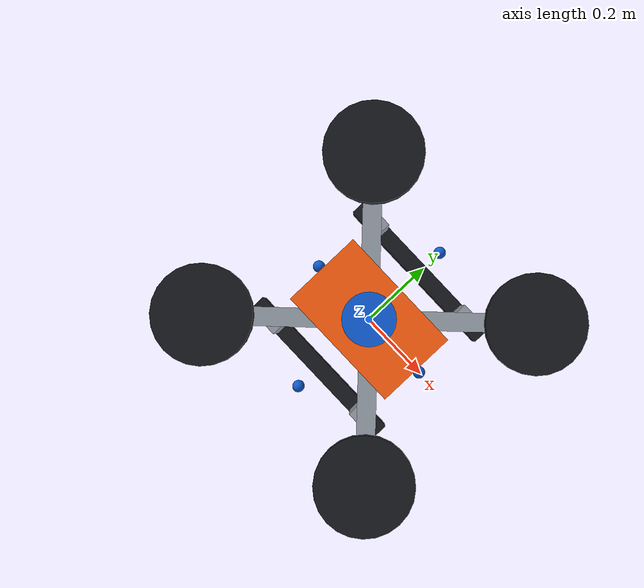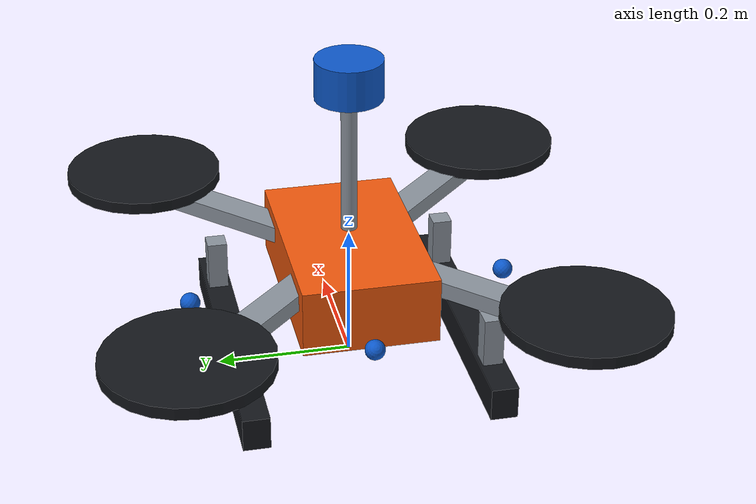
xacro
<?xml version="1.0"?>
<robot name="campus_uav" xmlns:xacro="http://www.ros.org/wiki/xacro">
  <xacro:arg name="params_path" default="$(find uav_description)/config/uav_model.yaml"/>
  <xacro:arg name="enable_docking" default="false"/>
  <xacro:arg name="visualize_sensor_rays" default="false"/>
  <xacro:property name="model" value="${xacro.load_yaml('$(arg params_path)')}"/>

  <material name="uav_orange"><color rgba="0.95 0.35 0.05 1"/></material>
  <material name="uav_dark"><color rgba="0.08 0.09 0.11 1"/></material>
  <material name="uav_silver"><color rgba="0.55 0.58 0.62 1"/></material>
  <material name="sensor_blue"><color rgba="0.05 0.35 0.80 1"/></material>

  <xacro:macro name="uav_range_sensor" params="name topic xyz rpy max_range">
    <link name="${name}_link">
      <visual>
        <geometry><sphere radius="0.015"/></geometry>
        <material name="sensor_blue"/>
      </visual>
    </link>
    <joint name="${name}_joint" type="fixed">
      <parent link="base_link"/>
      <child link="${name}_link"/>
      <origin xyz="${xyz}" rpy="${rpy}"/>
    </joint>
    <gazebo reference="${name}_link">
      <sensor name="${name}" type="ray">
        <always_on>true</always_on>
        <update_rate>10</update_rate>
        <visualize>$(arg visualize_sensor_rays)</visualize>
        <ray>
          <scan>
            <horizontal>
              <samples>5</samples>
              <resolution>1</resolution>
              <min_angle>-0.0872664626</min_angle>
              <max_angle>0.0872664626</max_angle>
            </horizontal>
          </scan>
          <range>
            <min>0.05</min>
            <max>${max_range}</max>
            <resolution>0.01</resolution>
          </range>
          <noise>
            <type>gaussian</type>
            <mean>0.0</mean>
            <stddev>0.005</stddev>
          </noise>
        </ray>
        <plugin name="${name}_ros" filename="libgazebo_ros_ray_sensor.so">
          <ros>
            <namespace>${model['namespace']}</namespace>
            <remapping>~/out:=range_raw/${topic}</remapping>
          </ros>
          <output_type>sensor_msgs/LaserScan</output_type>
          <frame_name>uav/${name}_link</frame_name>
        </plugin>
      </sensor>
    </gazebo>
  </xacro:macro>

  <link name="base_footprint"/>
  <joint name="base_footprint_joint" type="fixed">
    <parent link="base_footprint"/>
    <child link="base_link"/>
  </joint>

  <link name="base_link">
    <inertial>
      <origin xyz="0 0 0.15" rpy="0 0 0"/>
      <mass value="1.535"/>
      <inertia ixx="0.1152" ixy="0" ixz="0" iyy="0.1152" iyz="0" izz="0.218"/>
    </inertial>
    <collision name="body_collision">
      <origin xyz="0 0 0.15" rpy="0 0 0"/>
      <geometry><box size="0.34 0.22 0.10"/></geometry>
    </collision>
    <collision name="arm_front_collision">
      <origin xyz="0 0 0.17" rpy="0 0 0.785398"/>
      <geometry><box size="0.78 0.045 0.025"/></geometry>
    </collision>
    <collision name="arm_rear_collision">
      <origin xyz="0 0 0.17" rpy="0 0 -0.785398"/>
      <geometry><box size="0.78 0.045 0.025"/></geometry>
    </collision>
    <collision name="rotor_front_left_collision">
      <origin xyz="0.275 0.275 0.19" rpy="0 0 0"/>
      <geometry><cylinder radius="0.12" length="0.018"/></geometry>
    </collision>
    <collision name="rotor_front_right_collision">
      <origin xyz="0.275 -0.275 0.19" rpy="0 0 0"/>
      <geometry><cylinder radius="0.12" length="0.018"/></geometry>
    </collision>
    <collision name="rotor_rear_left_collision">
      <origin xyz="-0.275 0.275 0.19" rpy="0 0 0"/>
      <geometry><cylinder radius="0.12" length="0.018"/></geometry>
    </collision>
    <collision name="rotor_rear_right_collision">
      <origin xyz="-0.275 -0.275 0.19" rpy="0 0 0"/>
      <geometry><cylinder radius="0.12" length="0.018"/></geometry>
    </collision>
    <collision name="left_skid_collision">
      <origin xyz="0 0.18 0.025" rpy="0 0 0"/>
      <geometry><box size="0.46 0.04 0.05"/></geometry>
    </collision>
    <collision name="right_skid_collision">
      <origin xyz="0 -0.18 0.025" rpy="0 0 0"/>
      <geometry><box size="0.46 0.04 0.05"/></geometry>
    </collision>
    <collision name="lidar_mast_collision">
      <origin xyz="0 0 0.33" rpy="0 0 0"/>
      <geometry><cylinder radius="0.015" length="0.24"/></geometry>
    </collision>
    <visual>
      <origin xyz="0 0 0.15" rpy="0 0 0"/>
      <geometry><box size="0.32 0.20 0.10"/></geometry>
      <material name="uav_orange"/>
    </visual>
    <visual>
      <origin xyz="0 0 0.17" rpy="0 0 0.785398"/>
      <geometry><box size="0.78 0.045 0.025"/></geometry>
      <material name="uav_silver"/>
    </visual>
    <visual>
      <origin xyz="0 0 0.17" rpy="0 0 -0.785398"/>
      <geometry><box size="0.78 0.045 0.025"/></geometry>
      <material name="uav_silver"/>
    </visual>
    <visual><origin xyz="0.275 0.275 0.19"/><geometry><cylinder radius="0.12" length="0.018"/></geometry><material name="uav_dark"/></visual>
    <visual><origin xyz="0.275 -0.275 0.19"/><geometry><cylinder radius="0.12" length="0.018"/></geometry><material name="uav_dark"/></visual>
    <visual><origin xyz="-0.275 0.275 0.19"/><geometry><cylinder radius="0.12" length="0.018"/></geometry><material name="uav_dark"/></visual>
    <visual><origin xyz="-0.275 -0.275 0.19"/><geometry><cylinder radius="0.12" length="0.018"/></geometry><material name="uav_dark"/></visual>
    <visual><origin xyz="0 0.18 0.025"/><geometry><box size="0.46 0.04 0.05"/></geometry><material name="uav_dark"/></visual>
    <visual><origin xyz="0 -0.18 0.025"/><geometry><box size="0.46 0.04 0.05"/></geometry><material name="uav_dark"/></visual>
    <visual><origin xyz="0.15 0.18 0.075"/><geometry><box size="0.03 0.03 0.10"/></geometry><material name="uav_silver"/></visual>
    <visual><origin xyz="-0.15 0.18 0.075"/><geometry><box size="0.03 0.03 0.10"/></geometry><material name="uav_silver"/></visual>
    <visual><origin xyz="0.15 -0.18 0.075"/><geometry><box size="0.03 0.03 0.10"/></geometry><material name="uav_silver"/></visual>
    <visual><origin xyz="-0.15 -0.18 0.075"/><geometry><box size="0.03 0.03 0.10"/></geometry><material name="uav_silver"/></visual>
    <visual><origin xyz="0 0 0.33"/><geometry><cylinder radius="0.012" length="0.24"/></geometry><material name="uav_silver"/></visual>
  </link>

  <link name="imu_link"/>
  <joint name="imu_joint" type="fixed">
    <parent link="base_link"/>
    <child link="imu_link"/>
    <origin xyz="0 0 0.15" rpy="0 0 0"/>
  </joint>

  <link name="top_3d_lidar_link">
    <visual>
      <geometry><cylinder radius="0.05" length="0.06"/></geometry>
      <material name="sensor_blue"/>
    </visual>
  </link>
  <joint name="top_3d_lidar_joint" type="fixed">
    <parent link="base_link"/>
    <child link="top_3d_lidar_link"/>
    <origin xyz="0 0 0.45" rpy="0 0 0"/>
  </joint>

  <link name="down_camera_link">
    <visual>
      <geometry><box size="0.05 0.07 0.04"/></geometry>
      <material name="sensor_blue"/>
    </visual>
  </link>
  <joint name="down_camera_joint" type="fixed">
    <parent link="base_link"/>
    <child link="down_camera_link"/>
    <origin xyz="0 0 0.09" rpy="0 1.57079632679 0"/>
  </joint>

  <link name="down_camera_optical_frame"/>
  <joint name="down_camera_optical_joint" type="fixed">
    <parent link="down_camera_link"/>
    <child link="down_camera_optical_frame"/>
    <origin xyz="0 0 0" rpy="-1.57079632679 0 -1.57079632679"/>
  </joint>

  <xacro:uav_range_sensor
    name="down_range" topic="down"
    xyz="0 0 0.09" rpy="0 1.57079632679 0" max_range="30.0"/>
  <xacro:uav_range_sensor
    name="front_down_range" topic="front_down"
    xyz="0.18 0 0.11" rpy="0 0.78539816339 0" max_range="4.0"/>
  <xacro:uav_range_sensor
    name="rear_down_range" topic="rear_down"
    xyz="-0.18 0 0.11" rpy="0 2.35619449019 0" max_range="4.0"/>
  <xacro:uav_range_sensor
    name="left_down_range" topic="left_down"
    xyz="0 0.24 0.11" rpy="0 0.78539816339 1.57079632679" max_range="4.0"/>
  <xacro:uav_range_sensor
    name="right_down_range" topic="right_down"
    xyz="0 -0.24 0.11" rpy="0 0.78539816339 -1.57079632679" max_range="4.0"/>

  <gazebo reference="base_link">
    <material>Gazebo/Orange</material>
    <mu1>1.0</mu1>
    <mu2>1.0</mu2>
    <kp>1000000.0</kp>
    <kd>100.0</kd>
    <minDepth>0.001</minDepth>
    <maxVel>0.1</maxVel>
  </gazebo>

  <gazebo>
    <xacro:if value="$(arg enable_docking)">
      <plugin name="ugv_uav_docking" filename="libugv_uav_docking_plugin.so">
        <ros><namespace>/uav</namespace></ros>
        <ugvModel>ugvcar</ugvModel>
        <ugvLink>base_footprint</ugvLink>
        <uavLink>base_footprint</uavLink>
        <dockingOffsetX>0.0</dockingOffsetX>
        <dockingOffsetY>0.0</dockingOffsetY>
        <dockingOffsetZ>0.42</dockingOffsetZ>
        <maximumDockingDistance>0.8</maximumDockingDistance>
      </plugin>
    </xacro:if>
  </gazebo>

  <gazebo reference="imu_link">
    <sensor name="uav_imu" type="imu">
      <always_on>true</always_on>
      <update_rate>50</update_rate>
      <visualize>false</visualize>
      <imu>
        <noise>
          <type>gaussian</type>
          <rate><mean>0</mean><stddev>0.002</stddev></rate>
          <accel><mean>0</mean><stddev>0.01</stddev></accel>
        </noise>
      </imu>
      <plugin name="uav_imu_ros" filename="libgazebo_ros_imu_sensor.so">
        <ros>
          <namespace>${model['namespace']}</namespace>
          <remapping>~/out:=imu</remapping>
        </ros>
        <initial_orientation_as_reference>false</initial_orientation_as_reference>
        <frame_name>uav/imu_link</frame_name>
      </plugin>
    </sensor>
  </gazebo>

  <gazebo reference="top_3d_lidar_link">
    <sensor name="uav_top_3d_lidar" type="ray">
      <always_on>true</always_on>
      <update_rate>10</update_rate>
      <visualize>$(arg visualize_sensor_rays)</visualize>
      <ray>
        <scan>
          <horizontal>
            <samples>240</samples>
            <resolution>1</resolution>
            <min_angle>-3.14159265359</min_angle>
            <max_angle>3.14159265359</max_angle>
          </horizontal>
          <vertical>
            <samples>24</samples>
            <resolution>1</resolution>
            <min_angle>-0.78539816339</min_angle>
            <max_angle>1.55334303427</max_angle>
          </vertical>
        </scan>
        <range>
          <min>0.35</min>
          <max>40.0</max>
          <resolution>0.01</resolution>
        </range>
        <noise>
          <type>gaussian</type>
          <mean>0.0</mean>
          <stddev>0.01</stddev>
        </noise>
      </ray>
      <plugin name="uav_top_3d_lidar_ros" filename="libgazebo_ros_ray_sensor.so">
        <ros>
          <namespace>${model['namespace']}</namespace>
          <remapping>~/out:=lidar/points</remapping>
        </ros>
        <output_type>sensor_msgs/PointCloud2</output_type>
        <frame_name>uav/top_3d_lidar_link</frame_name>
      </plugin>
    </sensor>
  </gazebo>

  <gazebo reference="down_camera_link">
    <sensor name="uav_down_camera" type="camera">
      <always_on>true</always_on>
      <update_rate>8</update_rate>
      <visualize>false</visualize>
      <camera>
        <horizontal_fov>1.0471975512</horizontal_fov>
        <image>
          <width>320</width>
          <height>240</height>
          <format>R8G8B8</format>
        </image>
        <clip>
          <near>0.10</near>
          <far>30.0</far>
        </clip>
        <noise>
          <type>gaussian</type>
          <mean>0.0</mean>
          <stddev>0.003</stddev>
        </noise>
      </camera>
      <plugin name="uav_down_camera_ros" filename="libgazebo_ros_camera.so">
        <ros>
          <namespace>${model['namespace']}</namespace>
        </ros>
        <camera_name>down_camera</camera_name>
        <frame_name>uav/down_camera_optical_frame</frame_name>
      </plugin>
    </sensor>
  </gazebo>
</robot>
